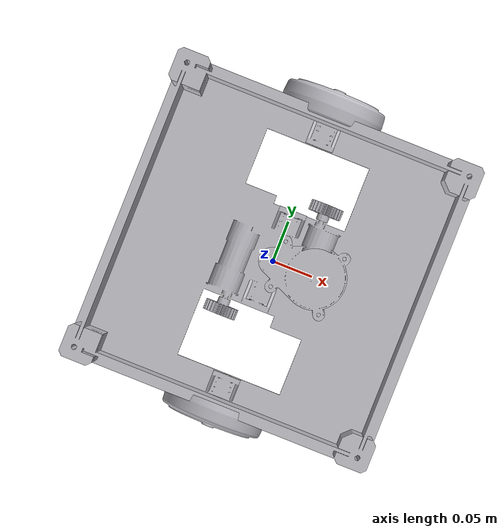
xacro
<?xml version="1.0" ?>
<robot name="mr_robot" xmlns:xacro="http://www.ros.org/wiki/xacro">

<xacro:include filename="$(find mr_robot_description)/urdf/materials.xacro" />
<xacro:include filename="$(find mr_robot_description)/urdf/mr_robot.trans" />
<xacro:include filename="$(find mr_robot_description)/gazebo/mr_robot.gazebo" />
<link name="base_link">
  <inertial>
    <origin xyz="-0.0042020930255137765 0.0016044362347912078 -0.033784511077864565" rpy="0 0 0"/>
    <mass value="11.747367971062936"/>
    <inertia ixx="0.185521" iyy="0.434537" izz="0.601531" ixy="0.000399" iyz="0.000191" ixz="-0.002314"/>
  </inertial>
  <visual>
    <origin xyz="0 0 0" rpy="0 0 0"/>
    <geometry>
      <mesh filename="file://$(find mr_robot_description)/meshes/base_link.stl" scale="0.001 0.001 0.001"/>
    </geometry>
    <material name="silver"/>
  </visual>
  <collision>
    <origin xyz="0 0 0" rpy="0 0 0"/>
    <geometry>
      <mesh filename="file://$(find mr_robot_description)/meshes/base_link.stl" scale="0.001 0.001 0.001"/>
    </geometry>
  </collision>
</link>

<link name="lidar_1_1_1_1">
  <inertial>
    <origin xyz="0.044879918687271925 -6.097903440245083e-05 0.028053604004029557" rpy="0 0 0"/>
    <mass value="1.1909684707773047"/>
    <inertia ixx="0.000484" iyy="0.000863" izz="0.001091" ixy="-1e-06" iyz="-2e-06" ixz="-0.000116"/>
  </inertial>
  <visual>
    <origin xyz="0.0 0.0 0.0035" rpy="0 0 0"/>
    <geometry>
      <mesh filename="file://$(find mr_robot_description)/meshes/lidar_1_1_1_1.stl" scale="0.001 0.001 0.001"/>
    </geometry>
    <material name="silver"/>
  </visual>
  <collision>
    <origin xyz="0.0 0.0 0.0035" rpy="0 0 0"/>
    <geometry>
      <mesh filename="file://$(find mr_robot_description)/meshes/lidar_1_1_1_1.stl" scale="0.001 0.001 0.001"/>
    </geometry>
  </collision>
</link>

<link name="right_wheel_1_1_1_1">
  <inertial>
    <origin xyz="0.4000009283693789 0.005475158708706684 5.550507450977071e-06" rpy="0 0 0"/>
    <mass value="2.280186245402095"/>
    <inertia ixx="0.002748" iyy="0.005028" izz="0.002748" ixy="0.0" iyz="-0.0" ixz="0.0"/>
  </inertial>
  <visual>
    <origin xyz="0.40035 -0.190925 0.0556" rpy="0 0 0"/>
    <geometry>
      <mesh filename="file://$(find mr_robot_description)/meshes/right_wheel_1_1_1_1.stl" scale="0.001 0.001 0.001"/>
    </geometry>
    <material name="silver"/>
  </visual>
  <collision>
    <origin xyz="0.40035 -0.190925 0.0556" rpy="0 0 0"/>
    <geometry>
      <mesh filename="file://$(find mr_robot_description)/meshes/right_wheel_1_1_1_1.stl" scale="0.001 0.001 0.001"/>
    </geometry>
  </collision>
</link>

<link name="left_wheel_1_1_1_1">
  <inertial>
    <origin xyz="0.40000092836938556 -0.00647516171903853 5.468764051753949e-06" rpy="0 0 0"/>
    <mass value="2.2801862454020894"/>
    <inertia ixx="0.002748" iyy="0.005028" izz="0.002748" ixy="-0.0" iyz="0.0" ixz="0.0"/>
  </inertial>
  <visual>
    <origin xyz="0.39965 0.182675 0.0556" rpy="0 0 0"/>
    <geometry>
      <mesh filename="file://$(find mr_robot_description)/meshes/left_wheel_1_1_1_1.stl" scale="0.001 0.001 0.001"/>
    </geometry>
    <material name="silver"/>
  </visual>
  <collision>
    <origin xyz="0.39965 0.182675 0.0556" rpy="0 0 0"/>
    <geometry>
      <mesh filename="file://$(find mr_robot_description)/meshes/left_wheel_1_1_1_1.stl" scale="0.001 0.001 0.001"/>
    </geometry>
  </collision>
</link>

<joint name="lidar_joint" type="fixed">
  <origin xyz="0.0 0.0 -0.0035" rpy="0 0 0"/>
  <parent link="base_link"/>
  <child link="lidar_1_1_1_1"/>
</joint>

<joint name="right_motor_joint" type="continuous">
  <origin xyz="-0.40035 0.190925 -0.0556" rpy="0 0 0"/>
  <parent link="base_link"/>
  <child link="right_wheel_1_1_1_1"/>
  <axis xyz="-0.0 1.0 0.0"/>
</joint>

<joint name="left_motor_joint" type="continuous">
  <origin xyz="-0.39965 -0.182675 -0.0556" rpy="0 0 0"/>
  <parent link="base_link"/>
  <child link="left_wheel_1_1_1_1"/>
  <axis xyz="0.0 -1.0 0.0"/>
</joint>

</robot>

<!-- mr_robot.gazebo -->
<robot name="mr_robot" xmlns:xacro="http://www.ros.org/wiki/xacro" >

<xacro:property name="body_color" value="Gazebo/Silver" />

<gazebo reference="base_link">
  <material>${body_color}</material>
  <mu1>0.2</mu1>
  <mu2>0.2</mu2>
  <selfCollide>true</selfCollide>
  <gravity>true</gravity>
</gazebo>

<gazebo reference="lidar_1_1_1_1">
  <material>${body_color}</material>
  <mu1>0.2</mu1>
  <mu2>0.2</mu2>
  <selfCollide>true</selfCollide>
</gazebo>

<gazebo reference="right_wheel_1_1_1_1">
  <material>${body_color}</material>
  <mu1>0.2</mu1>
  <mu2>0.2</mu2>
  <selfCollide>true</selfCollide>
</gazebo>

<gazebo reference="left_wheel_1_1_1_1">
  <material>${body_color}</material>
  <mu1>0.2</mu1>
  <mu2>0.2</mu2>
  <selfCollide>true</selfCollide>
</gazebo>

</robot>
